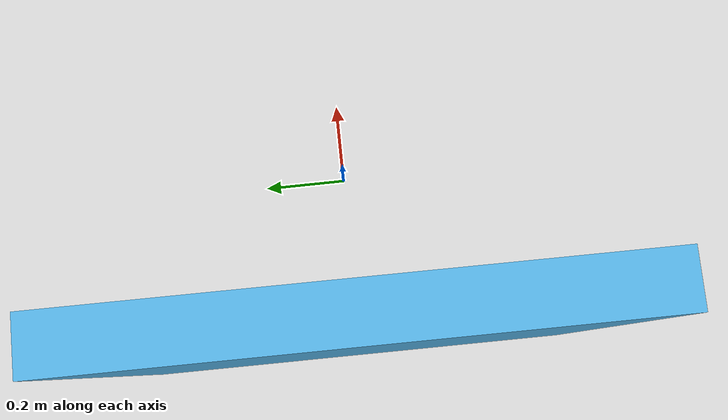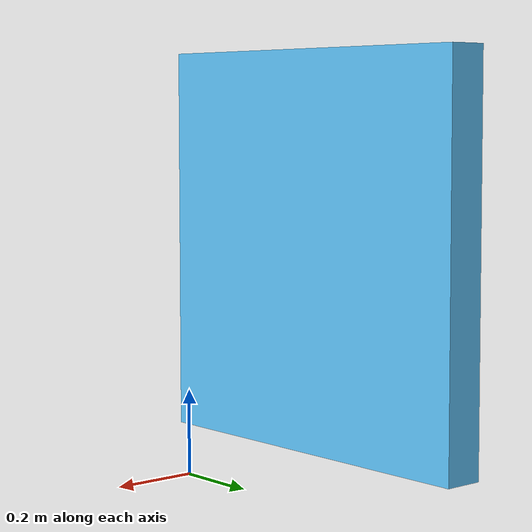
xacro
<robot
  name="box" xmlns:xacro="http://www.ros.org/wiki/xacro">

  <xacro:include filename="$(find elfin_description)/urdf/materials.xacro" />

  <gazebo reference="box">
    <visual name='visual'>
     <material>
       <script>
         <uri>file://media/materials/scripts/gazebo.material</uri>
         <name>Gazebo/Orange</name>
       </script>
     </material>
    </visual>
  </gazebo>

  <link name="world"/>

  <joint name="world_base" type="fixed">
    <origin
      xyz="-0.4 0 0"
      rpy="0 0 0" />
    <parent
      link="world" />
    <child
      link="box" />
  </joint>

  <link name="box">
    <static> true </static>

    <visual>
      <origin xyz="0 0 0.5" rpy="0 0 0" />
      <geometry>
         <box size="0.1 1 1"/>
      </geometry>
    </visual>

    <collision>
      <origin xyz="0 0 0.5" rpy="0 0 0" />
      <geometry>
         <box size="0.1 1 1"/>
      </geometry>
      <surface>
        <friction>
          <ode>
            <mu>0.01</mu>
            <mu2>0.01</mu2>
            <fdir1>0 0 1</fdir1>
            <slip1>0.0</slip1>
            <slip2>0.0</slip2>
          </ode>
        </friction>
        <contact>
          <ode>
            <min_depth>5</min_depth>
            <kp>1e6</kp>
          </ode>
        </contact>
      </surface>
    </collision>

    <inertial>
      <mass value="20" />
      <origin xyz="0 0 0" rpy="0 0 0"/>
      <inertia ixx="0.1" ixy="0" ixz="0" iyy="0.1" iyz="0" izz="0.1" />
    </inertial>
  </link>

</robot>
